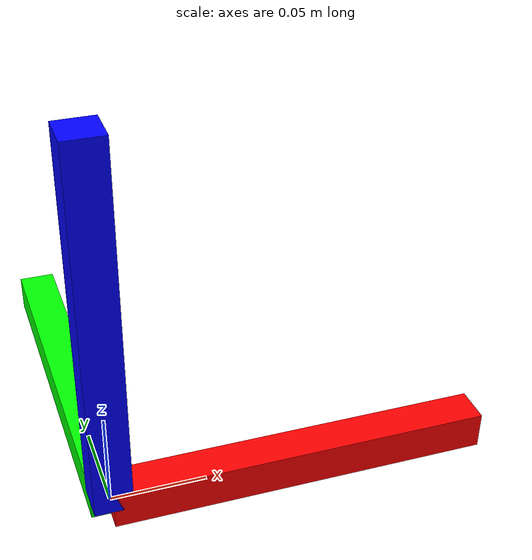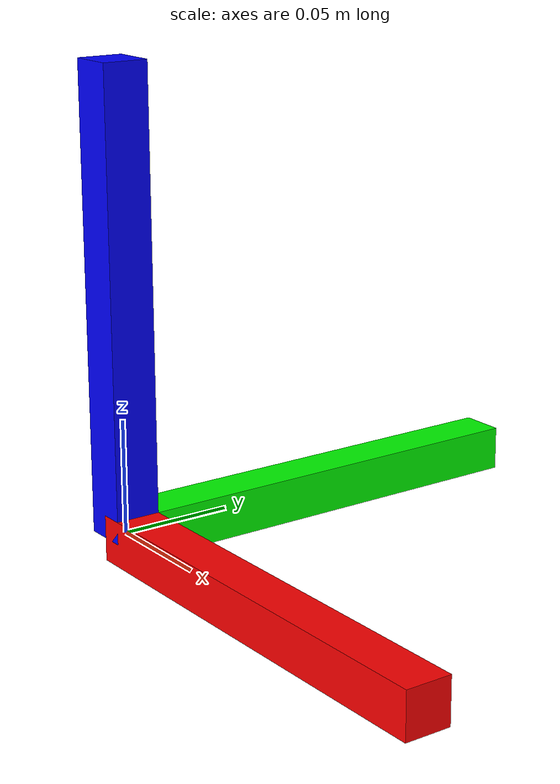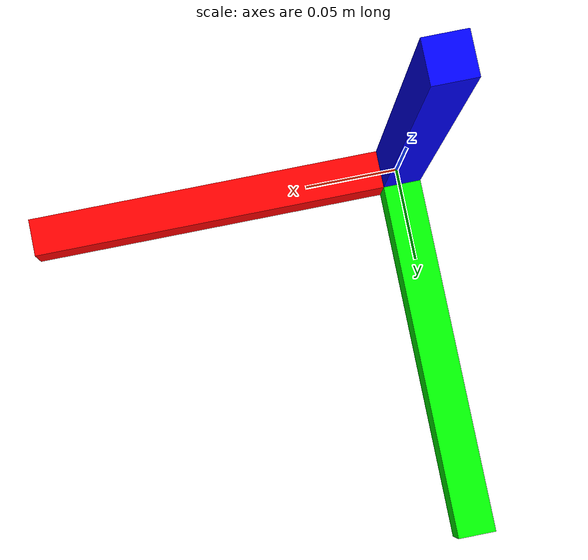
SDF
<?xml version='1.0'?>
<sdf version="1.4">
  <model name="goal">
    <pose>0 0 0.0 0 0 0</pose>
    <static>true</static>

    <link name="goal">
      <visual name="x">
        <pose>0.1 0 0 0 0 0</pose>
        <geometry>
          <box>
            <size>0.2 0.02 0.02</size>
          </box>
        </geometry>
        <material>
          <ambient>1 0 0 1</ambient>
          <diffuse>1 0 0 1</diffuse>
          <specular>0.1 0.1 0.1 1</specular>
          <emissive>0 0 0 0</emissive>
        </material>
      </visual>

      <visual name="y">
        <pose>0 0.1 0 0 0 0</pose>
        <geometry>
          <box>
            <size>0.02 0.2 0.02</size>
          </box>
        </geometry>
        <material>
          <ambient>0 1 0 1</ambient>
          <diffuse>0 1 0 1</diffuse>
          <specular>0.1 0.1 0.1 1</specular>
          <emissive>0 0 0 0</emissive>
        </material>
      </visual>

      <visual name="z">
        <pose>0 0 0.1 0 0 0</pose>
        <geometry>
          <box>
            <size>0.02 0.02 0.2</size>
          </box>
        </geometry>
        <material>
          <ambient>0 0 1 1</ambient>
          <diffuse>0 0 1 1</diffuse>
          <specular>0.1 0.1 0.1 1</specular>
          <emissive>0 0 0 0</emissive>
        </material>
      </visual>

    </link>
  </model>
</sdf>
